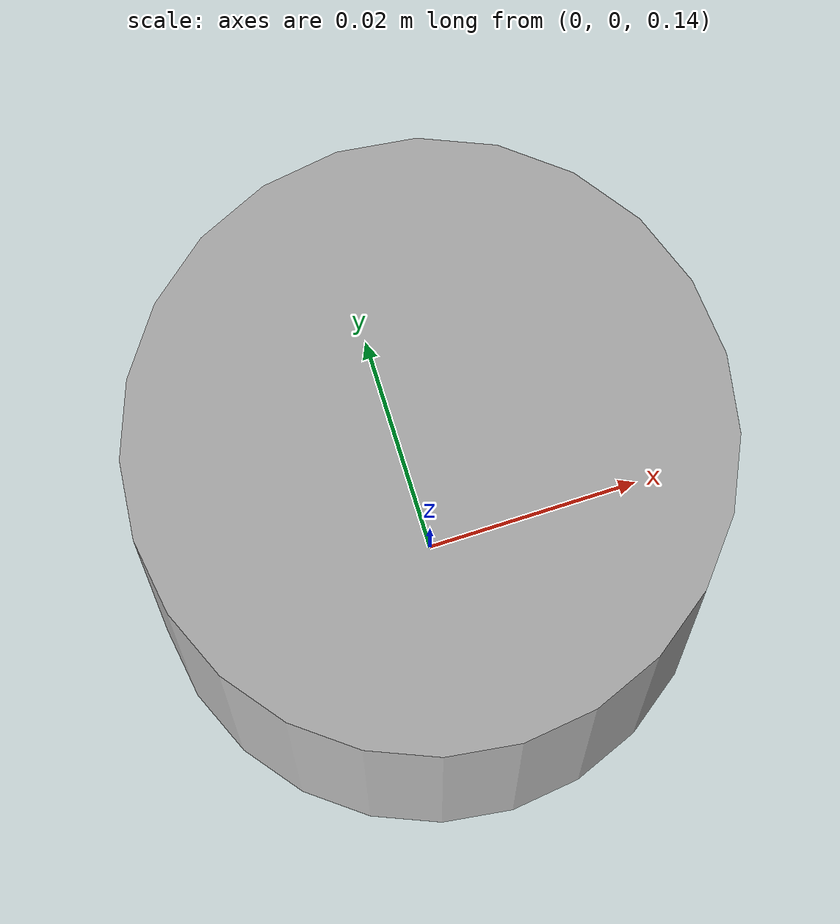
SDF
<?xml version='1.0'?>
<sdf version='1.6'>
  <model name='iiwa_ee'>
    <link name='ee_body'>
      <pose frame=''>0 0 0.09 0 -0 0</pose>
      <inertial>
        <mass>0.28424</mass>
        <inertia>
          <ixx>0.00028393</ixx>
          <ixy>0.0</ixy>
          <ixz>0.0</ixz>
          <iyy> 0.00028393</iyy>
          <iyz>0.0</iyz>
          <izz>0.00004607</izz>
        </inertia>
        <pose frame=''>0 0 0.09 0 -0 0</pose>
      </inertial>
      <self_collide>0</self_collide>
      <visual name='ee_visual'>
        <pose frame=''>0 0 0.1 0 -0 0</pose>
        <geometry>
            <cylinder>
                <radius>0.0256</radius>
                <length>0.1016</length>
            </cylinder>
        </geometry>
        <cast_shadows>1</cast_shadows>
        <transparency>0</transparency>
      </visual>
      <collision name='ee_collision'>
        <laser_retro>0</laser_retro>
        <max_contacts>10</max_contacts>
        <pose frame=''>0 0 0.1016 0 -0 0</pose>
        <geometry>
            <cylinder>
                <radius>0.0256</radius>
                <length>0.03</length>
            </cylinder>
        </geometry>
      </collision>
    </link>
    <static>0</static>
    <allow_auto_disable>1</allow_auto_disable>
  </model>
</sdf>
